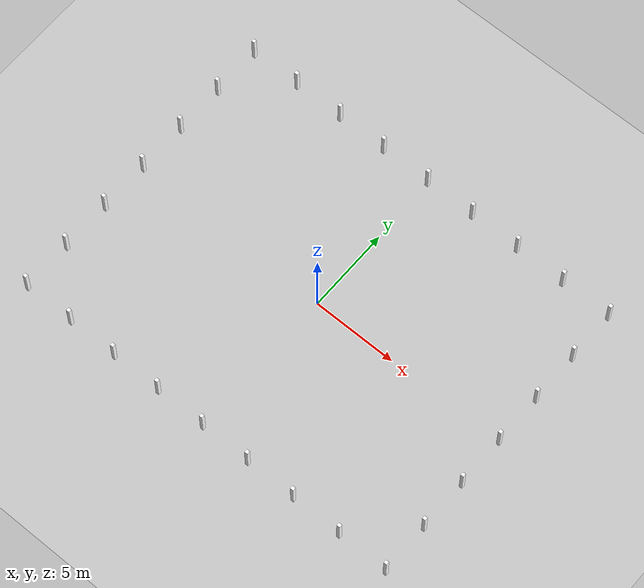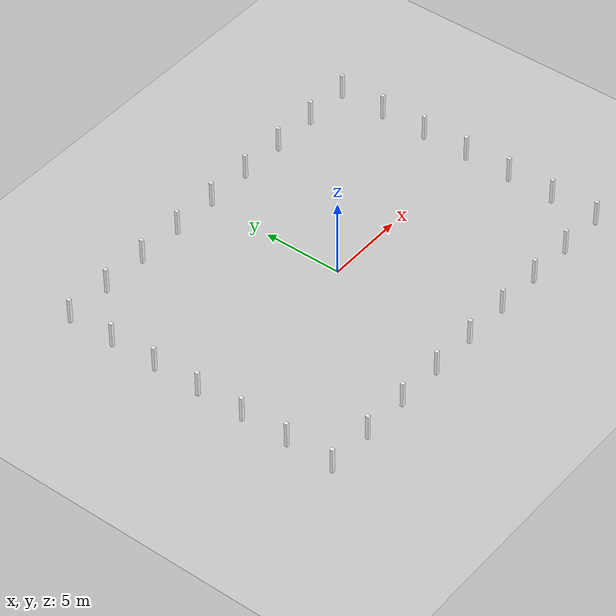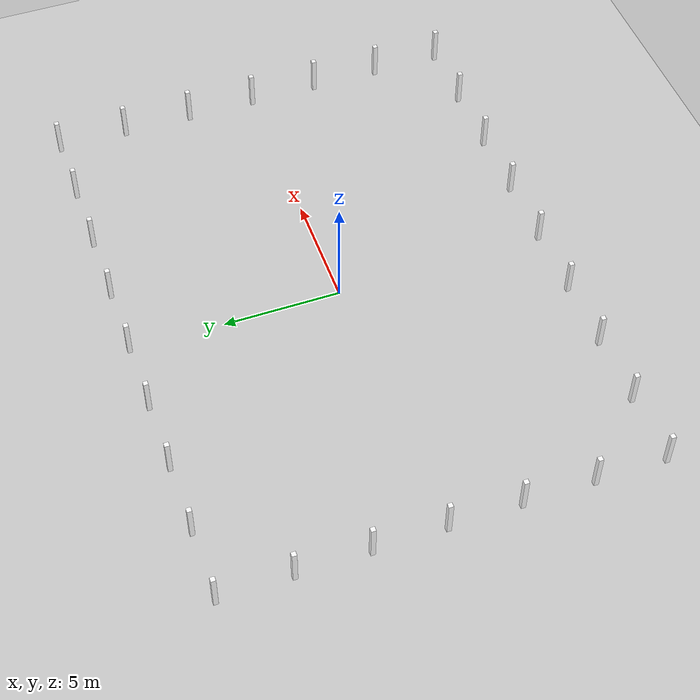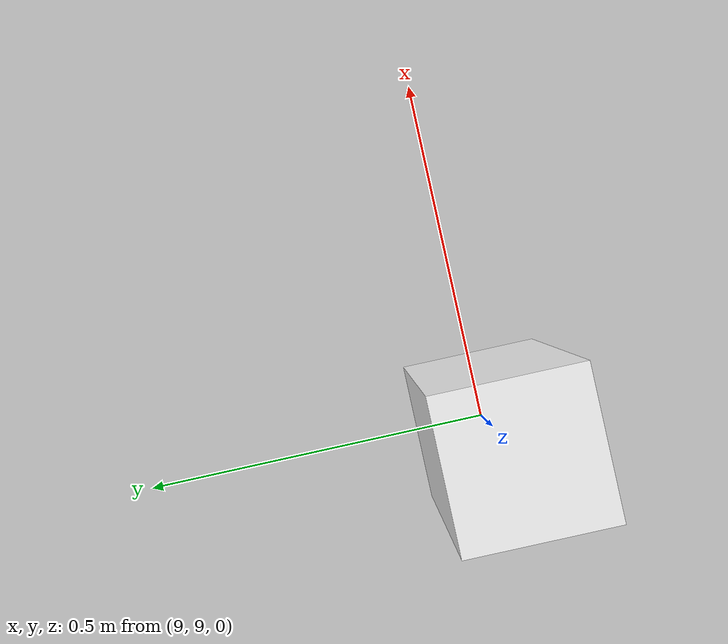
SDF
<sdf version="1.4">
 <world name="default">
  <model name="ground_plane">
   <static>1</static>
   <link name="link">
    <collision name="collision">
     <geometry><plane><normal>0 0 1</normal><size>100 100</size></plane></geometry>
     <surface><friction><ode><mu>100</mu><mu2>50</mu2></ode></friction></surface>
    </collision>
    <visual name="visual">
     <cast_shadows>0</cast_shadows>
     <geometry><plane><normal>0 0 1</normal><size>100 100</size></plane></geometry>
     <material>
      <script><uri>file://media/materials/scripts/gazebo.material</uri><name>Gazebo/Grey</name></script>
     </material>
    </visual>
    <velocity_decay><linear>0</linear><angular>0</angular></velocity_decay>
   </link>
  </model>
  <light name="sun" type="directional">
   <pose>0 0 10 0 -0 0</pose>
   <diffuse>0.8 0.8 0.8 1</diffuse>
   <specular>0.2 0.2 0.2 1</specular>
   <attenuation>
    <range>1000</range>
    <constant>0.9</constant>
    <linear>0.01</linear>
    <quadratic>0.001</quadratic>
   </attenuation>
   <direction>-0.5 0.1 -0.9</direction>
  </light>
  <physics type="ode">
   <max_step_size>0.001</max_step_size>
   <real_time_factor>1</real_time_factor>
   <real_time_update_rate>1000</real_time_update_rate>
   <gravity>0 0 -9.8</gravity>
  </physics>
  <scene><ambient>0.4 0.4 0.4 1</ambient><background>0.7 0.7 0.7 1</background><shadows>1</shadows></scene>
  <spherical_coordinates>
   <surface_model>EARTH_WGS84</surface_model>
   <latitude_deg>0</latitude_deg>
   <longitude_deg>0</longitude_deg>
   <elevation>0</elevation>
   <heading_deg>0</heading_deg>
  </spherical_coordinates>
  <model name="slam_pole_1">
   <static>1</static>
   <link name="link">
    <collision name="collision">
     <geometry><mesh><uri>model://slam_pole/meshes/slam_pole.dae</uri></mesh></geometry>
    </collision>
    <visual name="visual">
     <geometry><mesh><uri>model://slam_pole/meshes/slam_pole.dae</uri></mesh></geometry>
    </visual>
    <velocity_decay><linear>0</linear><angular>0</angular></velocity_decay>
   </link>
   <pose>12 0 0 0 -0 0</pose>
  </model>
  <model name="slam_pole_2">
   <static>1</static>
   <link name="link">
    <collision name="collision">
     <geometry><mesh><uri>model://slam_pole/meshes/slam_pole.dae</uri></mesh></geometry>
    </collision>
    <visual name="visual">
     <geometry><mesh><uri>model://slam_pole/meshes/slam_pole.dae</uri></mesh></geometry>
    </visual>
    <velocity_decay><linear>0</linear><angular>0</angular></velocity_decay>
   </link>
   <pose>12 3 0 0 -0 0</pose>
  </model>
  <model name="slam_pole_3">
   <static>1</static>
   <link name="link">
    <collision name="collision">
     <geometry><mesh><uri>model://slam_pole/meshes/slam_pole.dae</uri></mesh></geometry>
    </collision>
    <visual name="visual">
     <geometry><mesh><uri>model://slam_pole/meshes/slam_pole.dae</uri></mesh></geometry>
    </visual>
    <velocity_decay><linear>0</linear><angular>0</angular></velocity_decay>
   </link>
   <pose>12 6 0 0 -0 0</pose>
  </model>
  <model name="slam_pole_4">
   <static>1</static>
   <link name="link">
    <collision name="collision">
     <geometry><mesh><uri>model://slam_pole/meshes/slam_pole.dae</uri></mesh></geometry>
    </collision>
    <visual name="visual">
     <geometry><mesh><uri>model://slam_pole/meshes/slam_pole.dae</uri></mesh></geometry>
    </visual>
    <velocity_decay><linear>0</linear><angular>0</angular></velocity_decay>
   </link>
   <pose>12 9 0 0 -0 0</pose>
  </model>
  <model name="slam_pole_5">
   <static>1</static>
   <link name="link">
    <collision name="collision">
     <geometry><mesh><uri>model://slam_pole/meshes/slam_pole.dae</uri></mesh></geometry>
    </collision>
    <visual name="visual">
     <geometry><mesh><uri>model://slam_pole/meshes/slam_pole.dae</uri></mesh></geometry>
    </visual>
    <velocity_decay><linear>0</linear><angular>0</angular></velocity_decay>
   </link>
   <pose>12 -3 0 0 -0 0</pose>
  </model>
  <model name="slam_pole_6">
   <static>1</static>
   <link name="link">
    <collision name="collision">
     <geometry><mesh><uri>model://slam_pole/meshes/slam_pole.dae</uri></mesh></geometry>
    </collision>
    <visual name="visual">
     <geometry><mesh><uri>model://slam_pole/meshes/slam_pole.dae</uri></mesh></geometry>
    </visual>
    <velocity_decay><linear>0</linear><angular>0</angular></velocity_decay>
   </link>
   <pose>12 -6 0 0 -0 0</pose>
  </model>
  <model name="slam_pole_7">
   <static>1</static>
   <link name="link">
    <collision name="collision">
     <geometry><mesh><uri>model://slam_pole/meshes/slam_pole.dae</uri></mesh></geometry>
    </collision>
    <visual name="visual">
     <geometry><mesh><uri>model://slam_pole/meshes/slam_pole.dae</uri></mesh></geometry>
    </visual>
    <velocity_decay><linear>0</linear><angular>0</angular></velocity_decay>
   </link>
   <pose>12 -9 0 0 -0 0</pose>
  </model>
  <model name="slam_pole_8">
   <static>1</static>
   <link name="link">
    <collision name="collision">
     <geometry><mesh><uri>model://slam_pole/meshes/slam_pole.dae</uri></mesh></geometry>
    </collision>
    <visual name="visual">
     <geometry><mesh><uri>model://slam_pole/meshes/slam_pole.dae</uri></mesh></geometry>
    </visual>
    <velocity_decay><linear>0</linear><angular>0</angular></velocity_decay>
   </link>
   <pose>9 -9 0 0 -0 0</pose>
  </model>
  <model name="slam_pole_9">
   <static>1</static>
   <link name="link">
    <collision name="collision">
     <geometry><mesh><uri>model://slam_pole/meshes/slam_pole.dae</uri></mesh></geometry>
    </collision>
    <visual name="visual">
     <geometry><mesh><uri>model://slam_pole/meshes/slam_pole.dae</uri></mesh></geometry>
    </visual>
    <velocity_decay><linear>0</linear><angular>0</angular></velocity_decay>
   </link>
   <pose>6 -9 0 0 -0 0</pose>
  </model>
  <model name="slam_pole_10">
   <static>1</static>
   <link name="link">
    <collision name="collision">
     <geometry><mesh><uri>model://slam_pole/meshes/slam_pole.dae</uri></mesh></geometry>
    </collision>
    <visual name="visual">
     <geometry><mesh><uri>model://slam_pole/meshes/slam_pole.dae</uri></mesh></geometry>
    </visual>
    <velocity_decay><linear>0</linear><angular>0</angular></velocity_decay>
   </link>
   <pose>3 -9 0 0 -0 0</pose>
  </model>
  <model name="slam_pole_11">
   <static>1</static>
   <link name="link">
    <collision name="collision">
     <geometry><mesh><uri>model://slam_pole/meshes/slam_pole.dae</uri></mesh></geometry>
    </collision>
    <visual name="visual">
     <geometry><mesh><uri>model://slam_pole/meshes/slam_pole.dae</uri></mesh></geometry>
    </visual>
    <velocity_decay><linear>0</linear><angular>0</angular></velocity_decay>
   </link>
   <pose>0 -9 0 0 -0 0</pose>
  </model>
  <model name="slam_pole_12">
   <static>1</static>
   <link name="link">
    <collision name="collision">
     <geometry><mesh><uri>model://slam_pole/meshes/slam_pole.dae</uri></mesh></geometry>
    </collision>
    <visual name="visual">
     <geometry><mesh><uri>model://slam_pole/meshes/slam_pole.dae</uri></mesh></geometry>
    </visual>
    <velocity_decay><linear>0</linear><angular>0</angular></velocity_decay>
   </link>
   <pose>-3 -9 0 0 -0 0</pose>
  </model>
  <model name="slam_pole_13">
   <static>1</static>
   <link name="link">
    <collision name="collision">
     <geometry><mesh><uri>model://slam_pole/meshes/slam_pole.dae</uri></mesh></geometry>
    </collision>
    <visual name="visual">
     <geometry><mesh><uri>model://slam_pole/meshes/slam_pole.dae</uri></mesh></geometry>
    </visual>
    <velocity_decay><linear>0</linear><angular>0</angular></velocity_decay>
   </link>
   <pose>-6 -9 0 0 -0 0</pose>
  </model>
  <model name="slam_pole_14">
   <static>1</static>
   <link name="link">
    <collision name="collision">
     <geometry><mesh><uri>model://slam_pole/meshes/slam_pole.dae</uri></mesh></geometry>
    </collision>
    <visual name="visual">
     <geometry><mesh><uri>model://slam_pole/meshes/slam_pole.dae</uri></mesh></geometry>
    </visual>
    <velocity_decay><linear>0</linear><angular>0</angular></velocity_decay>
   </link>
   <pose>-9 -9 0 0 -0 0</pose>
  </model>
  <model name="slam_pole_15">
   <static>1</static>
   <link name="link">
    <collision name="collision">
     <geometry><mesh><uri>model://slam_pole/meshes/slam_pole.dae</uri></mesh></geometry>
    </collision>
    <visual name="visual">
     <geometry><mesh><uri>model://slam_pole/meshes/slam_pole.dae</uri></mesh></geometry>
    </visual>
    <velocity_decay><linear>0</linear><angular>0</angular></velocity_decay>
   </link>
   <pose>-12 -9 0 0 -0 0</pose>
  </model>
  <model name="slam_pole_16">
   <static>1</static>
   <link name="link">
    <collision name="collision">
     <geometry><mesh><uri>model://slam_pole/meshes/slam_pole.dae</uri></mesh></geometry>
    </collision>
    <visual name="visual">
     <geometry><mesh><uri>model://slam_pole/meshes/slam_pole.dae</uri></mesh></geometry>
    </visual>
    <velocity_decay><linear>0</linear><angular>0</angular></velocity_decay>
   </link>
   <pose>-12 -6 0 0 -0 0</pose>
  </model>
  <model name="slam_pole_17">
   <static>1</static>
   <link name="link">
    <collision name="collision">
     <geometry><mesh><uri>model://slam_pole/meshes/slam_pole.dae</uri></mesh></geometry>
    </collision>
    <visual name="visual">
     <geometry><mesh><uri>model://slam_pole/meshes/slam_pole.dae</uri></mesh></geometry>
    </visual>
    <velocity_decay><linear>0</linear><angular>0</angular></velocity_decay>
   </link>
   <pose>-12 -3 0 0 -0 0</pose>
  </model>
  <model name="slam_pole_18">
   <static>1</static>
   <link name="link">
    <collision name="collision">
     <geometry><mesh><uri>model://slam_pole/meshes/slam_pole.dae</uri></mesh></geometry>
    </collision>
    <visual name="visual">
     <geometry><mesh><uri>model://slam_pole/meshes/slam_pole.dae</uri></mesh></geometry>
    </visual>
    <velocity_decay><linear>0</linear><angular>0</angular></velocity_decay>
   </link>
   <pose>-12 0 0 0 -0 0</pose>
  </model>
  <model name="slam_pole_19">
   <static>1</static>
   <link name="link">
    <collision name="collision">
     <geometry><mesh><uri>model://slam_pole/meshes/slam_pole.dae</uri></mesh></geometry>
    </collision>
    <visual name="visual">
     <geometry><mesh><uri>model://slam_pole/meshes/slam_pole.dae</uri></mesh></geometry>
    </visual>
    <velocity_decay><linear>0</linear><angular>0</angular></velocity_decay>
   </link>
   <pose>-12 3 0 0 -0 0</pose>
  </model>
  <model name="slam_pole_20">
   <static>1</static>
   <link name="link">
    <collision name="collision">
     <geometry><mesh><uri>model://slam_pole/meshes/slam_pole.dae</uri></mesh></geometry>
    </collision>
    <visual name="visual">
     <geometry><mesh><uri>model://slam_pole/meshes/slam_pole.dae</uri></mesh></geometry>
    </visual>
    <velocity_decay><linear>0</linear><angular>0</angular></velocity_decay>
   </link>
   <pose>-12 6 0 0 -0 0</pose>
  </model>
  <model name="slam_pole_21">
   <static>1</static>
   <link name="link">
    <collision name="collision">
     <geometry><mesh><uri>model://slam_pole/meshes/slam_pole.dae</uri></mesh></geometry>
    </collision>
    <visual name="visual">
     <geometry><mesh><uri>model://slam_pole/meshes/slam_pole.dae</uri></mesh></geometry>
    </visual>
    <velocity_decay><linear>0</linear><angular>0</angular></velocity_decay>
   </link>
   <pose>-12 9 0 0 -0 0</pose>
  </model>
  <model name="slam_pole_22">
   <static>1</static>
   <link name="link">
    <collision name="collision">
     <geometry><mesh><uri>model://slam_pole/meshes/slam_pole.dae</uri></mesh></geometry>
    </collision>
    <visual name="visual">
     <geometry><mesh><uri>model://slam_pole/meshes/slam_pole.dae</uri></mesh></geometry>
    </visual>
    <velocity_decay><linear>0</linear><angular>0</angular></velocity_decay>
   </link>
   <pose>-9 9 0 0 -0 0</pose>
  </model>
  <model name="slam_pole_23">
   <static>1</static>
   <link name="link">
    <collision name="collision">
     <geometry><mesh><uri>model://slam_pole/meshes/slam_pole.dae</uri></mesh></geometry>
    </collision>
    <visual name="visual">
     <geometry><mesh><uri>model://slam_pole/meshes/slam_pole.dae</uri></mesh></geometry>
    </visual>
    <velocity_decay><linear>0</linear><angular>0</angular></velocity_decay>
   </link>
   <pose>-6 9 0 0 -0 0</pose>
  </model>
  <model name="slam_pole_24">
   <static>1</static>
   <link name="link">
    <collision name="collision">
     <geometry><mesh><uri>model://slam_pole/meshes/slam_pole.dae</uri></mesh></geometry>
    </collision>
    <visual name="visual">
     <geometry><mesh><uri>model://slam_pole/meshes/slam_pole.dae</uri></mesh></geometry>
    </visual>
    <velocity_decay><linear>0</linear><angular>0</angular></velocity_decay>
   </link>
   <pose>-3 9 0 0 -0 0</pose>
  </model>
  <model name="slam_pole_25">
   <static>1</static>
   <link name="link">
    <collision name="collision">
     <geometry><mesh><uri>model://slam_pole/meshes/slam_pole.dae</uri></mesh></geometry>
    </collision>
    <visual name="visual">
     <geometry><mesh><uri>model://slam_pole/meshes/slam_pole.dae</uri></mesh></geometry>
    </visual>
    <velocity_decay><linear>0</linear><angular>0</angular></velocity_decay>
   </link>
   <pose>0 9 0 0 -0 0</pose>
  </model>
  <model name="slam_pole_26">
   <static>1</static>
   <link name="link">
    <collision name="collision">
     <geometry><mesh><uri>model://slam_pole/meshes/slam_pole.dae</uri></mesh></geometry>
    </collision>
    <visual name="visual">
     <geometry><mesh><uri>model://slam_pole/meshes/slam_pole.dae</uri></mesh></geometry>
    </visual>
    <velocity_decay><linear>0</linear><angular>0</angular></velocity_decay>
   </link>
   <pose>3 9 0 0 -0 0</pose>
  </model>
  <model name="slam_pole_27">
   <static>1</static>
   <link name="link">
    <collision name="collision">
     <geometry><mesh><uri>model://slam_pole/meshes/slam_pole.dae</uri></mesh></geometry>
    </collision>
    <visual name="visual">
     <geometry><mesh><uri>model://slam_pole/meshes/slam_pole.dae</uri></mesh></geometry>
    </visual>
    <velocity_decay><linear>0</linear><angular>0</angular></velocity_decay>
   </link>
   <pose>6 9 0 0 -0 0</pose>
  </model>
  <model name="slam_pole_28">
   <static>1</static>
   <link name="link">
    <collision name="collision">
     <geometry><mesh><uri>model://slam_pole/meshes/slam_pole.dae</uri></mesh></geometry>
    </collision>
    <visual name="visual">
     <geometry><mesh><uri>model://slam_pole/meshes/slam_pole.dae</uri></mesh></geometry>
    </visual>
    <velocity_decay><linear>0</linear><angular>0</angular></velocity_decay>
   </link>
   <pose>9 9 0 0 -0 0</pose>
  </model>
 </world>
</sdf>
